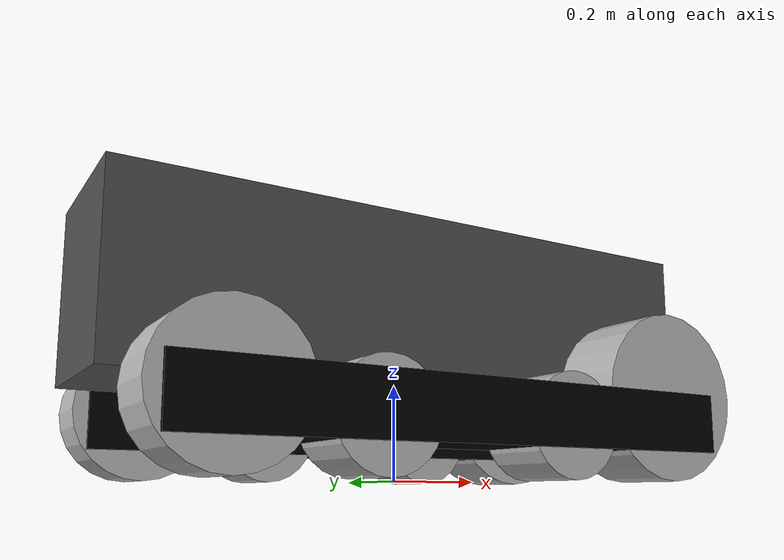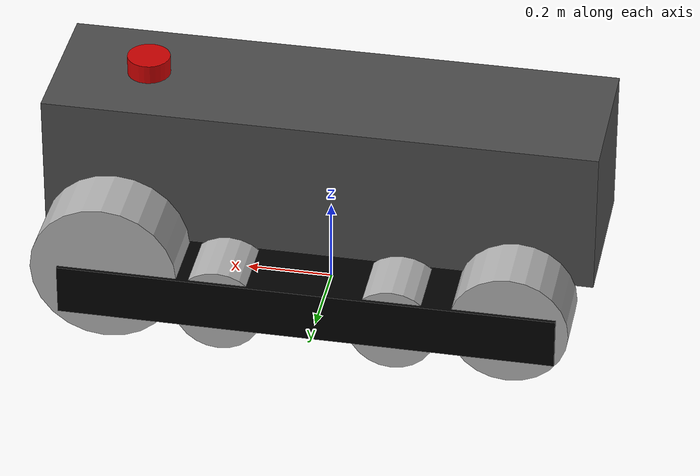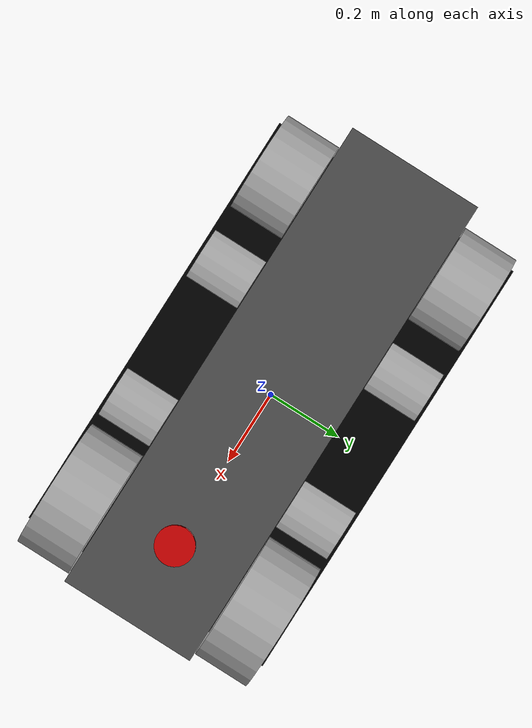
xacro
<?xml version="1.0"?>
<robot name="tracked_vehicle" xmlns:xacro="http://www.ros.org/wiki/xacro">

  <!-- Materials -->
  <material name="black">
    <color rgba="0.0 0.0 0.0 1.0"/>
  </material>
  <material name="dark_grey">
    <color rgba="0.3 0.3 0.3 1.0"/>
  </material>
  <material name="light_grey">
    <color rgba="0.7 0.7 0.7 1.0"/>
  </material>
  <material name="red">
    <color rgba="0.8 0.0 0.0 1.0"/>
  </material>

  <!-- Constants -->
  <!-- Dimensions from inputs -->
  <xacro:property name="chassis_width" value="0.355"/>  <!-- 35.5 cm -->
  <xacro:property name="total_width" value="0.695"/>    <!-- 69.5 cm -->
  <xacro:property name="track_width" value="0.165"/>    <!-- 16.5 cm -->
  <xacro:property name="vehicle_length" value="1.285"/> <!-- 128.5 cm -->
  <xacro:property name="vehicle_height" value="0.575"/> <!-- 57.5 cm -->

  <!-- Calculated dimensions -->
  <xacro:property name="track_length" value="${vehicle_length * 0.9}"/> <!-- 90% of the vehicle length -->
  <xacro:property name="chassis_height" value="${vehicle_height * 0.6}"/> <!-- 60% of the vehicle height -->
  <xacro:property name="wheel_radius" value="${vehicle_height * 0.3}"/> <!-- 30% of the vehicle height -->
  <xacro:property name="wheel_sep_length" value="${track_length * 0.7}"/> <!-- 70% of the track length for wheel separation -->

  <!-- Base Link (Center of the robot) -->
  <link name="base_link">
    <visual>
      <geometry>
        <box size="${vehicle_length} ${chassis_width} ${chassis_height}"/>
      </geometry>
      <material name="dark_grey"/>
      <origin xyz="0 0 ${wheel_radius + chassis_height/2}"/>
    </visual>
    <collision>
      <geometry>
        <box size="${vehicle_length} ${chassis_width} ${chassis_height}"/>
      </geometry>
      <origin xyz="0 0 ${wheel_radius + chassis_height/2}"/>
    </collision>
    <inertial>
      <mass value="50.0"/>
      <inertia ixx="1.0" ixy="0.0" ixz="0.0" iyy="1.0" iyz="0.0" izz="1.0"/>
      <origin xyz="0 0 ${wheel_radius + chassis_height/2}"/>
    </inertial>
  </link>

  <!-- Right Track -->
  <link name="right_track_link">
    <visual>
      <geometry>
        <box size="${track_length} ${track_width} ${wheel_radius * 0.7}"/>
      </geometry>
      <material name="black"/>
    </visual>
    <collision>
      <geometry>
        <box size="${track_length} ${track_width} ${wheel_radius * 0.5}"/>
      </geometry>
    </collision>
    <inertial>
      <mass value="5.0"/>
      <inertia ixx="0.1" ixy="0.0" ixz="0.0" iyy="0.1" iyz="0.0" izz="0.1"/>
    </inertial>
  </link>

  <joint name="right_track_joint" type="fixed">
    <parent link="base_link"/>
    <child link="right_track_link"/>
    <origin xyz="0 ${-(chassis_width/2 + track_width/2)} ${wheel_radius * 0.7}"/>
  </joint>

  <!-- Left Track -->
  <link name="left_track_link">
    <visual>
      <geometry>
        <box size="${track_length} ${track_width} ${wheel_radius * 0.7}"/>
      </geometry>
      <material name="black"/>
    </visual>
    <collision>
      <geometry>
        <box size="${track_length} ${track_width} ${wheel_radius * 0.5}"/>
      </geometry>
    </collision>
    <inertial>
      <mass value="5.0"/>
      <inertia ixx="0.1" ixy="0.0" ixz="0.0" iyy="0.1" iyz="0.0" izz="0.1"/>
    </inertial>
  </link>

  <joint name="left_track_joint" type="fixed">
    <parent link="base_link"/>
    <child link="left_track_link"/>
    <origin xyz="0 ${chassis_width/2 + track_width/2} ${wheel_radius * 0.7}"/>
  </joint>

  <!-- Front Right Wheel (Sprocket) -->
  <link name="front_right_wheel_link">
    <visual>
      <geometry>
        <cylinder length="${track_width * 0.9}" radius="${wheel_radius}"/>
      </geometry>
      <material name="light_grey"/>
      <origin rpy="${pi/2} 0 0"/>
    </visual>
    <collision>
      <geometry>
        <cylinder length="${track_width * 0.9}" radius="${wheel_radius}"/>
      </geometry>
      <origin rpy="${pi/2} 0 0"/>
    </collision>
    <inertial>
      <mass value="2.0"/>
      <inertia ixx="0.02" ixy="0.0" ixz="0.0" iyy="0.02" iyz="0.0" izz="0.02"/>
    </inertial>
  </link>

  <joint name="front_right_wheel_joint" type="continuous">
    <parent link="base_link"/>
    <child link="front_right_wheel_link"/>
    <origin xyz="${vehicle_length/2 - wheel_radius} ${-(chassis_width/2 + track_width/2)} ${wheel_radius}"/>
    <axis xyz="0 1 0"/>
  </joint>

  <!-- Front Left Wheel (Sprocket) -->
  <link name="front_left_wheel_link">
    <visual>
      <geometry>
        <cylinder length="${track_width * 0.9}" radius="${wheel_radius}"/>
      </geometry>
      <material name="light_grey"/>
      <origin rpy="${pi/2} 0 0"/>
    </visual>
    <collision>
      <geometry>
        <cylinder length="${track_width * 0.9}" radius="${wheel_radius}"/>
      </geometry>
      <origin rpy="${pi/2} 0 0"/>
    </collision>
    <inertial>
      <mass value="2.0"/>
      <inertia ixx="0.02" ixy="0.0" ixz="0.0" iyy="0.02" iyz="0.0" izz="0.02"/>
    </inertial>
  </link>

  <joint name="front_left_wheel_joint" type="continuous">
    <parent link="base_link"/>
    <child link="front_left_wheel_link"/>
    <origin xyz="${vehicle_length/2 - wheel_radius} ${chassis_width/2 + track_width/2} ${wheel_radius}"/>
    <axis xyz="0 1 0"/>
  </joint>

  <!-- Rear Right Wheel (Idler) -->
  <link name="rear_right_wheel_link">
    <visual>
      <geometry>
        <cylinder length="${track_width * 0.9}" radius="${wheel_radius * 0.8}"/>
      </geometry>
      <material name="light_grey"/>
      <origin rpy="${pi/2} 0 0"/>
    </visual>
    <collision>
      <geometry>
        <cylinder length="${track_width * 0.9}" radius="${wheel_radius * 0.8}"/>
      </geometry>
      <origin rpy="${pi/2} 0 0"/>
    </collision>
    <inertial>
      <mass value="1.5"/>
      <inertia ixx="0.015" ixy="0.0" ixz="0.0" iyy="0.015" iyz="0.0" izz="0.015"/>
    </inertial>
  </link>

  <joint name="rear_right_wheel_joint" type="continuous">
    <parent link="base_link"/>
    <child link="rear_right_wheel_link"/>
    <origin xyz="${-vehicle_length/2 + wheel_radius} ${-(chassis_width/2 + track_width/2)} ${wheel_radius * 0.8}"/>
    <axis xyz="0 1 0"/>
  </joint>

  <!-- Rear Left Wheel (Idler) -->
  <link name="rear_left_wheel_link">
    <visual>
      <geometry>
        <cylinder length="${track_width * 0.9}" radius="${wheel_radius * 0.8}"/>
      </geometry>
      <material name="light_grey"/>
      <origin rpy="${pi/2} 0 0"/>
    </visual>
    <collision>
      <geometry>
        <cylinder length="${track_width * 0.9}" radius="${wheel_radius * 0.8}"/>
      </geometry>
      <origin rpy="${pi/2} 0 0"/>
    </collision>
    <inertial>
      <mass value="1.5"/>
      <inertia ixx="0.015" ixy="0.0" ixz="0.0" iyy="0.015" iyz="0.0" izz="0.015"/>
    </inertial>
  </link>

  <joint name="rear_left_wheel_joint" type="continuous">
    <parent link="base_link"/>
    <child link="rear_left_wheel_link"/>
    <origin xyz="${-vehicle_length/2 + wheel_radius} ${chassis_width/2 + track_width/2} ${wheel_radius * 0.8}"/>
    <axis xyz="0 1 0"/>
  </joint>

  <!-- Road Wheels (Right Side) -->
  <link name="right_road_wheel_front_link">
    <visual>
      <geometry>
        <cylinder length="${track_width * 0.9}" radius="${wheel_radius * 0.6}"/>
      </geometry>
      <material name="light_grey"/>
      <origin rpy="${pi/2} 0 0"/>
    </visual>
    <collision>
      <geometry>
        <cylinder length="${track_width * 0.9}" radius="${wheel_radius * 0.6}"/>
      </geometry>
      <origin rpy="${pi/2} 0 0"/>
    </collision>
    <inertial>
      <mass value="1.0"/>
      <inertia ixx="0.01" ixy="0.0" ixz="0.0" iyy="0.01" iyz="0.0" izz="0.01"/>
    </inertial>
  </link>

  <joint name="right_road_wheel_front_joint" type="continuous">
    <parent link="base_link"/>
    <child link="right_road_wheel_front_link"/>
    <origin xyz="${wheel_sep_length/4} ${-(chassis_width/2 + track_width/2)} ${wheel_radius * 0.6}"/>
    <axis xyz="0 1 0"/>
  </joint>

  <link name="right_road_wheel_rear_link">
    <visual>
      <geometry>
        <cylinder length="${track_width * 0.9}" radius="${wheel_radius * 0.6}"/>
      </geometry>
      <material name="light_grey"/>
      <origin rpy="${pi/2} 0 0"/>
    </visual>
    <collision>
      <geometry>
        <cylinder length="${track_width * 0.9}" radius="${wheel_radius * 0.6}"/>
      </geometry>
      <origin rpy="${pi/2} 0 0"/>
    </collision>
    <inertial>
      <mass value="1.0"/>
      <inertia ixx="0.01" ixy="0.0" ixz="0.0" iyy="0.01" iyz="0.0" izz="0.01"/>
    </inertial>
  </link>

  <joint name="right_road_wheel_rear_joint" type="continuous">
    <parent link="base_link"/>
    <child link="right_road_wheel_rear_link"/>
    <origin xyz="${-wheel_sep_length/4} ${-(chassis_width/2 + track_width/2)} ${wheel_radius * 0.6}"/>
    <axis xyz="0 1 0"/>
  </joint>

  <!-- Road Wheels (Left Side) -->
  <link name="left_road_wheel_front_link">
    <visual>
      <geometry>
        <cylinder length="${track_width * 0.9}" radius="${wheel_radius * 0.6}"/>
      </geometry>
      <material name="light_grey"/>
      <origin rpy="${pi/2} 0 0"/>
    </visual>
    <collision>
      <geometry>
        <cylinder length="${track_width * 0.9}" radius="${wheel_radius * 0.6}"/>
      </geometry>
      <origin rpy="${pi/2} 0 0"/>
    </collision>
    <inertial>
      <mass value="1.0"/>
      <inertia ixx="0.01" ixy="0.0" ixz="0.0" iyy="0.01" iyz="0.0" izz="0.01"/>
    </inertial>
  </link>

  <joint name="left_road_wheel_front_joint" type="continuous">
    <parent link="base_link"/>
    <child link="left_road_wheel_front_link"/>
    <origin xyz="${wheel_sep_length/4} ${chassis_width/2 + track_width/2} ${wheel_radius * 0.6}"/>
    <axis xyz="0 1 0"/>
  </joint>

  <link name="left_road_wheel_rear_link">
    <visual>
      <geometry>
        <cylinder length="${track_width * 0.9}" radius="${wheel_radius * 0.6}"/>
      </geometry>
      <material name="light_grey"/>
      <origin rpy="${pi/2} 0 0"/>
    </visual>
    <collision>
      <geometry>
        <cylinder length="${track_width * 0.9}" radius="${wheel_radius * 0.6}"/>
      </geometry>
      <origin rpy="${pi/2} 0 0"/>
    </collision>
    <inertial>
      <mass value="1.0"/>
      <inertia ixx="0.01" ixy="0.0" ixz="0.0" iyy="0.01" iyz="0.0" izz="0.01"/>
    </inertial>
  </link>

  <joint name="left_road_wheel_rear_joint" type="continuous">
    <parent link="base_link"/>
    <child link="left_road_wheel_rear_link"/>
    <origin xyz="${-wheel_sep_length/4} ${chassis_width/2 + track_width/2} ${wheel_radius * 0.6}"/>
    <axis xyz="0 1 0"/>
  </joint>

  <!-- Ouster Lidar Sensor Frame -->

  <joint name="velodyne_joint" type="fixed">
    <parent link="base_link"/>
    <child link="velodyne"/>
    <origin xyz="${vehicle_length/3} 0 ${wheel_radius + chassis_height + 0.02}"/>
  </joint>

  <link name="velodyne">
    <visual>
      <origin xyz="0 0 0" rpy="0 0 0"/>
      <geometry>
        <cylinder radius="0.05" length="0.05"/>
      </geometry>
      <material name="red"/>
    </visual>

    <collision>
      <origin xyz="0.015 0 -0.0065" rpy="0 0 0"/>
      <geometry>
        <cylinder length="0.0315" radius="0.055"/>
      </geometry>
    </collision>

    <inertial>
      <mass value="0.114" />
      <origin xyz="0 0 0" />
      <inertia ixx="0.001" ixy="0.0" ixz="0.0" iyy="0.001" iyz="0.0" izz="0.001" />
    </inertial>
  </link>

  <joint name="imu_joint" type="fixed">
    <parent link="base_link"/>
    <child link="imu_link"/>
    <origin xyz="${vehicle_length/3} 0 ${wheel_radius + chassis_height + 0.02}"/>
  </joint>

  <link name="imu_link"/>

  <gazebo reference="imu_link">
    <sensor name="tb3_imu" type="imu">
      <always_on>true</always_on>
      <update_rate>200</update_rate>
      <imu>
        <angular_velocity>
          <x>
            <noise type="gaussian">
              <mean>0.0</mean>
              <stddev>2e-4</stddev>
            </noise>
          </x>
          <y>
            <noise type="gaussian">
              <mean>0.0</mean>
              <stddev>2e-4</stddev>
            </noise>
          </y>
          <z>
            <noise type="gaussian">
              <mean>0.0</mean>
              <stddev>2e-4</stddev>
            </noise>
          </z>
        </angular_velocity>
        <linear_acceleration>
          <x>
            <noise type="gaussian">
              <mean>0.0</mean>
              <stddev>1.7e-2</stddev>
            </noise>
          </x>
          <y>
            <noise type="gaussian">
              <mean>0.0</mean>
              <stddev>1.7e-2</stddev>
            </noise>
          </y>
          <z>
            <noise type="gaussian">
              <mean>0.0</mean>
              <stddev>1.7e-2</stddev>
            </noise>
          </z>
        </linear_acceleration>
      </imu>
    </sensor>
  </gazebo>

  <gazebo reference="velodyne">
    <sensor name="velodyne" type="gpu_lidar">
        <update_rate>10</update_rate>
        <visualize>true</visualize>
        <always_on>true</always_on>
        <ignition_frame_id>velodyne</ignition_frame_id>
        <topic>velodyne</topic>
        <lidar>
          <scan>
            <horizontal>
              <samples>512</samples>
              <resolution>1</resolution>
              <min_angle>-3.14159265359</min_angle>
              <max_angle>3.14159265359</max_angle>
            </horizontal>
            <vertical>
              <samples>32</samples>
              <resolution>1</resolution>
              <min_angle>-0.55</min_angle>
              <max_angle>0.26</max_angle>
            </vertical>
          </scan>
          <range>
            <min>0.2</min>
            <max>131.0</max>
            <resolution>0.01</resolution>
          </range>
        </lidar>
      </sensor>
  </gazebo>

  <gazebo>
    <plugin filename="gz-sim-diff-drive-system" name="gz::sim::systems::DiffDrive">
      <left_joint>front_left_wheel_joint</left_joint>
      <right_joint>front_right_wheel_joint</right_joint>
      <left_joint>rear_left_wheel_joint</left_joint>
      <right_joint>rear_right_wheel_joint</right_joint>
      <left_joint>left_road_wheel_front_joint</left_joint>
      <right_joint>right_road_wheel_front_joint</right_joint>
      <wheel_separation>${total_width}</wheel_separation>
      <wheel_radius>${wheel_radius}</wheel_radius>
      <max_linear_acceleration>1.0</max_linear_acceleration>
      <child_frame_id>base_link</child_frame_id>
      <topic>cmd_vel</topic>
      <tf_topic>/tf</tf_topic>
    </plugin>
  </gazebo>

  <gazebo>
    <plugin filename="gz-sim-joint-state-publisher-system"
      name="gz::sim::systems::JointStatePublisher">
      <topic>joint_states</topic>
      <joint_name>front_left_wheel_joint</joint_name>
      <joint_name>front_right_wheel_joint</joint_name>
      <joint_name>rear_left_wheel_joint</joint_name>
      <joint_name>rear_right_wheel_joint</joint_name>
      <joint_name>left_road_wheel_front_joint</joint_name>
      <joint_name>right_road_wheel_front_joint</joint_name>
    </plugin>
  </gazebo>

  <!-- Add gazebo plugins for differential drive controller -->

</robot>
